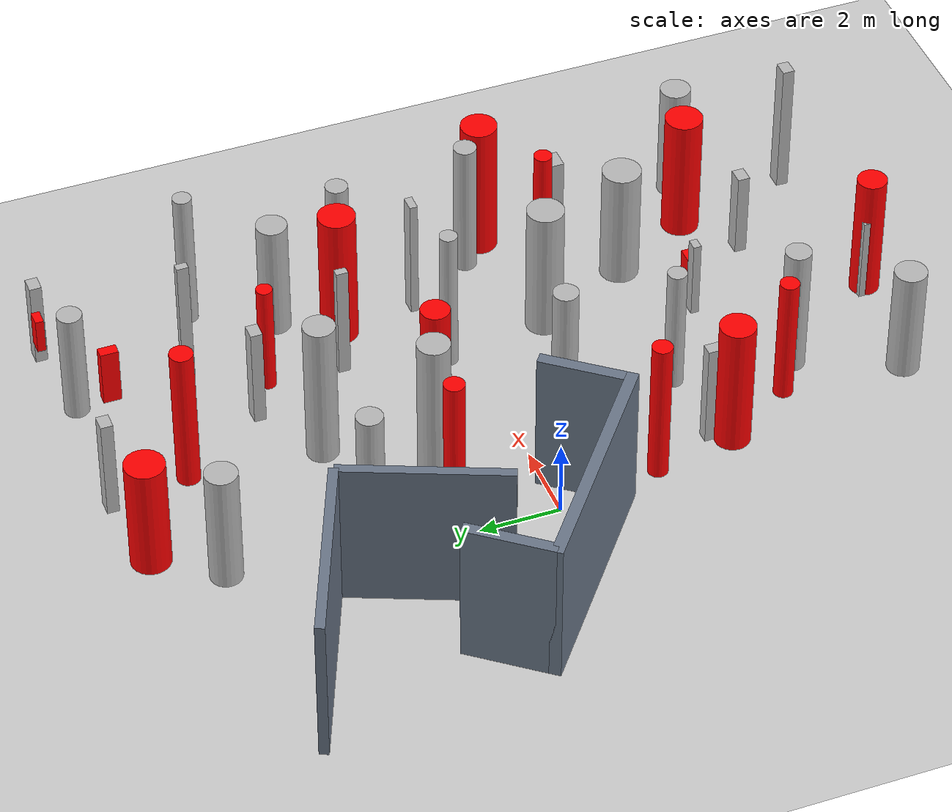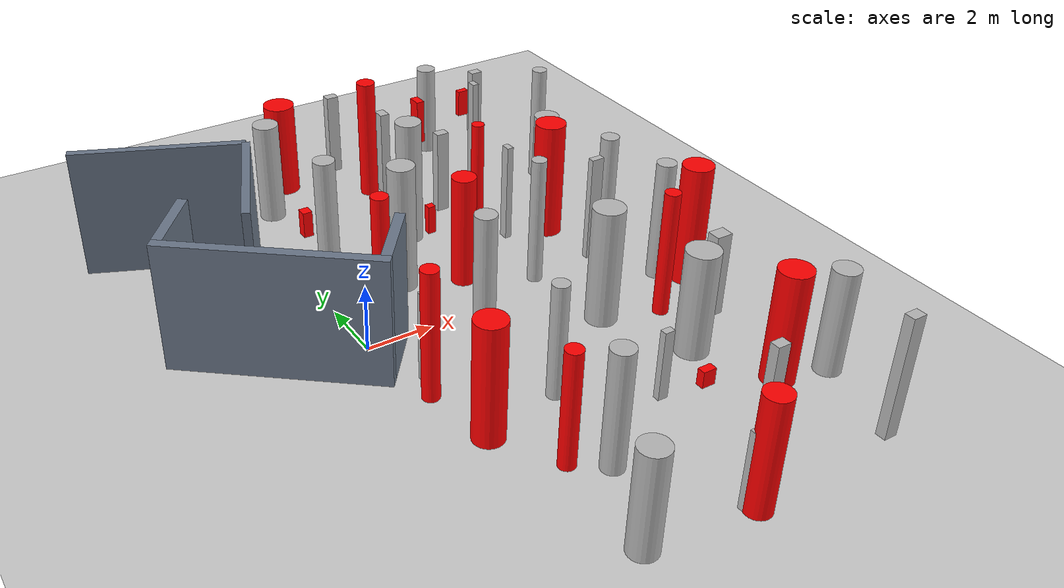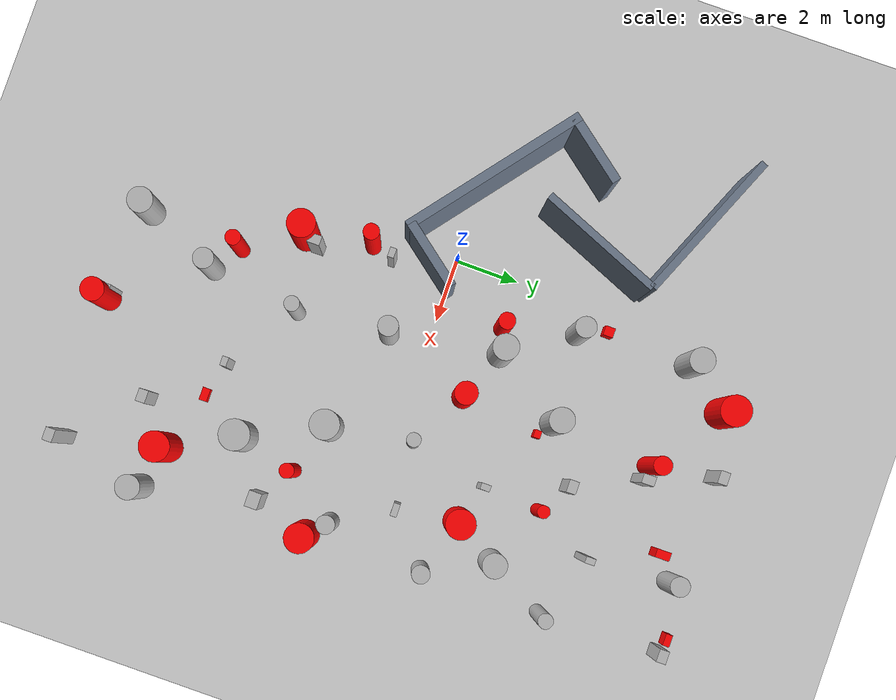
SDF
<sdf version="1.7">
 <world name="default">
  <model name="ground_plane">
   <static>1</static>
   <link name="link">
    <collision name="collision">
     <geometry><plane><normal>0 0 1</normal><size>100 100</size></plane></geometry>
     <surface>
      <contact><collide_bitmask>65535</collide_bitmask></contact>
      <friction><ode><mu>100</mu><mu2>50</mu2></ode></friction>
     </surface>
    </collision>
    <visual name="visual">
     <cast_shadows>0</cast_shadows>
     <geometry><plane><normal>0 0 1</normal><size>100 100</size></plane></geometry>
     <material>
      <script><uri>file://media/materials/scripts/gazebo.material</uri><name>Gazebo/Grey</name></script>
     </material>
    </visual>
   </link>
  </model>
  <model name="cylinder_0_0.7_0.7_3.5">
   <static>true</static>
   <pose>0.9762700785464951 4.30378732744839 1.7724415914984484 0 0 0</pose>
   <link name="link">
    <collision name="collision">
     <geometry>
      <cylinder><radius>0.3270964398016714</radius><length>3.5448831829968968</length></cylinder>
     </geometry>
    </collision>
    <visual name="visual">
     <geometry>
      <cylinder><radius>0.3270964398016714</radius><length>3.5448831829968968</length></cylinder>
     </geometry>
    </visual>
   </link>
  </model>
  <model name="cylinder_1_0.6_0.6_4.0">
   <static>true</static>
   <pose>2.9178822613331223 -1.2482557747461498 1.9818313802505148 0 0 0</pose>
   <link name="link">
    <collision name="collision">
     <geometry>
      <cylinder><radius>0.3150324556477333</radius><length>3.9636627605010295</length></cylinder>
     </geometry>
    </collision>
    <visual name="visual">
     <geometry>
      <cylinder><radius>0.3150324556477333</radius><length>3.9636627605010295</length></cylinder>
     </geometry>
    </visual>
   </link>
  </model>
  <model name="cylinder_2_0.4_0.4_3.9">
   <static>true</static>
   <pose>5.834500761653292 0.5778983950580896 1.9627983191463305 0 0 0</pose>
   <link name="link">
    <collision name="collision">
     <geometry>
      <cylinder><radius>0.2213108174593661</radius><length>3.925596638292661</length></cylinder>
     </geometry>
    </collision>
    <visual name="visual">
     <geometry>
      <cylinder><radius>0.2213108174593661</radius><length>3.925596638292661</length></cylinder>
     </geometry>
    </visual>
   </link>
  </model>
  <model name="cylinder_4_0.5_0.5_3.8">
   <static>true</static>
   <pose>9.57236684465528 5.983171284334472 1.8902645881432276 0 0 0</pose>
   <link name="link">
    <collision name="collision">
     <geometry>
      <cylinder><radius>0.23548232776067998</radius><length>3.7805291762864552</length></cylinder>
     </geometry>
    </collision>
    <visual name="visual">
     <geometry>
      <cylinder><radius>0.23548232776067998</radius><length>3.7805291762864552</length></cylinder>
     </geometry>
    </visual>
   </link>
  </model>
  <model name="cylinder_5_0.6_0.6_3.5">
   <static>true</static>
   <pose>2.7984204265504764 -7.132934251819072 1.760924160875036 0 0 0</pose>
   <link name="link">
    <collision name="collision">
     <geometry>
      <cylinder><radius>0.3243985819971571</radius><length>3.521848321750072</length></cylinder>
     </geometry>
    </collision>
    <visual name="visual">
     <geometry>
      <cylinder><radius>0.3243985819971571</radius><length>3.521848321750072</length></cylinder>
     </geometry>
    </visual>
   </link>
  </model>
  <model name="cylinder_7_0.8_0.8_3.9">
   <static>true</static>
   <pose>2.352709941517541 2.241914454448428 1.9718740392573122 0 0 0</pose>
   <link name="link">
    <collision name="collision">
     <geometry>
      <cylinder><radius>0.404546089731045</radius><length>3.9437480785146244</length></cylinder>
     </geometry>
    </collision>
    <visual name="visual">
     <geometry>
      <cylinder><radius>0.404546089731045</radius><length>3.9437480785146244</length></cylinder>
     </geometry>
    </visual>
   </link>
  </model>
  <model name="cylinder_12_0.6_0.6_3.0">
   <static>true</static>
   <pose>9.535221763806742 2.0969103949009193 1.5195938961271604 0 0 0</pose>
   <link name="link">
    <collision name="collision">
     <geometry>
      <cylinder><radius>0.2848420887729229</radius><length>3.039187792254321</length></cylinder>
     </geometry>
    </collision>
    <visual name="visual">
     <geometry>
      <cylinder><radius>0.2848420887729229</radius><length>3.039187792254321</length></cylinder>
     </geometry>
    </visual>
   </link>
  </model>
  <model name="cylinder_16_0.8_0.8_3.0">
   <static>true</static>
   <pose>1.730258696201663 -9.597849076250128 1.5023477380962735 0 0 0</pose>
   <link name="link">
    <collision name="collision">
     <geometry><cylinder><radius>0.403344961038869</radius><length>3.004695476192547</length></cylinder></geometry>
    </collision>
    <visual name="visual">
     <geometry><cylinder><radius>0.403344961038869</radius><length>3.004695476192547</length></cylinder></geometry>
    </visual>
   </link>
  </model>
  <model name="cylinder_17_0.6_0.6_3.7">
   <static>true</static>
   <pose>9.0549802303397 -1.0574924276474529 1.849739637658752 0 0 0</pose>
   <link name="link">
    <collision name="collision">
     <geometry>
      <cylinder><radius>0.2892310852565401</radius><length>3.699479275317504</length></cylinder>
     </geometry>
    </collision>
    <visual name="visual">
     <geometry>
      <cylinder><radius>0.2892310852565401</radius><length>3.699479275317504</length></cylinder>
     </geometry>
    </visual>
   </link>
  </model>
  <model name="cylinder_18_0.9_0.9_3.6">
   <static>true</static>
   <pose>6.275956394049544 -2.069885183060307 1.7906364363179295 0 0 0</pose>
   <link name="link">
    <collision name="collision">
     <geometry>
      <cylinder><radius>0.4645206085564558</radius><length>3.581272872635859</length></cylinder>
     </geometry>
    </collision>
    <visual name="visual">
     <geometry>
      <cylinder><radius>0.4645206085564558</radius><length>3.581272872635859</length></cylinder>
     </geometry>
    </visual>
   </link>
  </model>
  <model name="cylinder_19_0.8_0.8_4.0">
   <static>true</static>
   <pose>3.8506318015553176 4.50508559639281 1.9780418173616119 0 0 0</pose>
   <link name="link">
    <collision name="collision">
     <geometry>
      <cylinder><radius>0.39319705976889124</radius><length>3.9560836347232238</length></cylinder>
     </geometry>
    </collision>
    <visual name="visual">
     <geometry>
      <cylinder><radius>0.39319705976889124</radius><length>3.9560836347232238</length></cylinder>
     </geometry>
    </visual>
   </link>
  </model>
  <model name="cylinder_20_0.5_0.5_3.4">
   <static>true</static>
   <pose>3.2034707498537007 -4.198447855791119 1.714384350472883 0 0 0</pose>
   <link name="link">
    <collision name="collision">
     <geometry>
      <cylinder><radius>0.24064221926673507</radius><length>3.428768700945766</length></cylinder>
     </geometry>
    </collision>
    <visual name="visual">
     <geometry>
      <cylinder><radius>0.24064221926673507</radius><length>3.428768700945766</length></cylinder>
     </geometry>
    </visual>
   </link>
  </model>
  <model name="cylinder_21_0.8_0.8_3.2">
   <static>true</static>
   <pose>9.976940131357331 -7.011033906840125 1.5812464673381874 0 0 0</pose>
   <link name="link">
    <collision name="collision">
     <geometry>
      <cylinder><radius>0.38466786928515323</radius><length>3.162492934676375</length></cylinder>
     </geometry>
    </collision>
    <visual name="visual">
     <geometry>
      <cylinder><radius>0.38466786928515323</radius><length>3.162492934676375</length></cylinder>
     </geometry>
    </visual>
   </link>
  </model>
  <model name="cylinder_23_0.6_0.6_3.0">
   <static>true</static>
   <pose>7.327646518572584 9.510430100057716 1.505857042092501 0 0 0</pose>
   <link name="link">
    <collision name="collision">
     <geometry>
      <cylinder><radius>0.30799341934350916</radius><length>3.011714084185002</length></cylinder>
     </geometry>
    </collision>
    <visual name="visual">
     <geometry>
      <cylinder><radius>0.30799341934350916</radius><length>3.011714084185002</length></cylinder>
     </geometry>
    </visual>
   </link>
  </model>
  <model name="cylinder_25_0.8_0.8_3.2">
   <static>true</static>
   <pose>8.561625869311818 4.0882880384706555 1.5823470782489564 0 0 0</pose>
   <link name="link">
    <collision name="collision">
     <geometry>
      <cylinder><radius>0.3864435204499291</radius><length>3.1646941564979127</length></cylinder>
     </geometry>
    </collision>
    <visual name="visual">
     <geometry>
      <cylinder><radius>0.3864435204499291</radius><length>3.1646941564979127</length></cylinder>
     </geometry>
    </visual>
   </link>
  </model>
  <model name="cylinder_28_0.8_0.8_3.2">
   <static>true</static>
   <pose>0.731584222174444 7.933425860806842 1.608448492199237 0 0 0</pose>
   <link name="link">
    <collision name="collision">
     <geometry>
      <cylinder><radius>0.3989234609300302</radius><length>3.216896984398474</length></cylinder>
     </geometry>
    </collision>
    <visual name="visual">
     <geometry>
      <cylinder><radius>0.3989234609300302</radius><length>3.216896984398474</length></cylinder>
     </geometry>
    </visual>
   </link>
  </model>
  <model name="cylinder_29_1.0_1.0_3.2">
   <static>true</static>
   <pose>7.453013108947905 -4.529159303687285 1.592817972152976 0 0 0</pose>
   <link name="link">
    <collision name="collision">
     <geometry>
      <cylinder><radius>0.48583749709158336</radius><length>3.185635944305952</length></cylinder>
     </geometry>
    </collision>
    <visual name="visual">
     <geometry>
      <cylinder><radius>0.48583749709158336</radius><length>3.185635944305952</length></cylinder>
     </geometry>
    </visual>
   </link>
  </model>
  <model name="box_1_0.4_0.3_2.3">
   <static>true</static>
   <pose>7.277112118464628 -7.649362880759338 1.1320681063451534 0 0 0</pose>
   <link name="link">
    <collision name="collision"><geometry><box><size>0.4 0.3 2.3</size></box></geometry></collision>
    <visual name="visual"><geometry><box><size>0.4 0.3 2.3</size></box></geometry></visual>
   </link>
  </model>
  <model name="box_3_0.2_0.2_2.3">
   <static>true</static>
   <pose>4.511887284211575 -9.771450827499379 1.1469466454003752 0 0 0</pose>
   <link name="link">
    <collision name="collision"><geometry><box><size>0.2 0.2 2.3</size></box></geometry></collision>
    <visual name="visual"><geometry><box><size>0.2 0.2 2.3</size></box></geometry></visual>
   </link>
  </model>
  <model name="box_4_0.4_0.3_2.7">
   <static>true</static>
   <pose>5.5739079188220675 5.5481512369750625 1.3738131379325615 0 0 0</pose>
   <link name="link">
    <collision name="collision"><geometry><box><size>0.4 0.3 2.7</size></box></geometry></collision>
    <visual name="visual"><geometry><box><size>0.4 0.3 2.7</size></box></geometry></visual>
   </link>
  </model>
  <model name="box_7_0.4_0.3_2.3">
   <static>true</static>
   <pose>9.485124256361006 9.806900031217879 1.1629544260466054 0 0 0</pose>
   <link name="link">
    <collision name="collision"><geometry><box><size>0.4 0.3 2.3</size></box></geometry></collision>
    <visual name="visual"><geometry><box><size>0.4 0.3 2.3</size></box></geometry></visual>
   </link>
  </model>
  <model name="box_9_0.3_0.4_2.8">
   <static>true</static>
   <pose>1.0937561732283796 -4.258969601607405 1.4148568693335641 0 0 0</pose>
   <link name="link">
    <collision name="collision"><geometry><box><size>0.3 0.4 2.8</size></box></geometry></collision>
    <visual name="visual"><geometry><box><size>0.3 0.4 2.8</size></box></geometry></visual>
   </link>
  </model>
  <model name="box_10_0.3_0.4_2.8">
   <static>true</static>
   <pose>4.614181982549523 7.634404246676794 1.3790568960774285 0 0 0</pose>
   <link name="link">
    <collision name="collision"><geometry><box><size>0.3 0.4 2.8</size></box></geometry></collision>
    <visual name="visual"><geometry><box><size>0.3 0.4 2.8</size></box></geometry></visual>
   </link>
  </model>
  <model name="box_11_0.4_0.3_3.6">
   <static>true</static>
   <pose>9.255406396804847 -9.662566532599206 1.8136786497018633 0 0 0</pose>
   <link name="link">
    <collision name="collision"><geometry><box><size>0.4 0.3 3.6</size></box></geometry></collision>
    <visual name="visual"><geometry><box><size>0.4 0.3 3.6</size></box></geometry></visual>
   </link>
  </model>
  <model name="box_16_0.2_0.3_3.1">
   <static>true</static>
   <pose>6.448134767113807 3.068423222272738 1.5369230010823904 0 0 0</pose>
   <link name="link">
    <collision name="collision"><geometry><box><size>0.2 0.3 3.1</size></box></geometry></collision>
    <visual name="visual"><geometry><box><size>0.2 0.3 3.1</size></box></geometry></visual>
   </link>
  </model>
  <model name="box_17_0.3_0.2_2.7">
   <static>true</static>
   <pose>0.6983370985416792 -1.9151276412148244 1.3650998770600098 0 0 0</pose>
   <link name="link">
    <collision name="collision"><geometry><box><size>0.3 0.2 2.7</size></box></geometry></collision>
    <visual name="visual"><geometry><box><size>0.3 0.2 2.7</size></box></geometry></visual>
   </link>
  </model>
  <model name="box_18_0.4_0.3_2.7">
   <static>true</static>
   <pose>3.815695523130591 9.746975141479364 1.3645446259967866 0 0 0</pose>
   <link name="link">
    <collision name="collision"><geometry><box><size>0.4 0.3 2.7</size></box></geometry></collision>
    <visual name="visual"><geometry><box><size>0.4 0.3 2.7</size></box></geometry></visual>
   </link>
  </model>
  <model name="box_23_0.3_0.2_2.1">
   <static>true</static>
   <pose>5.4622010501083835 -5.662594998179187 1.042924190608832 0 0 0</pose>
   <link name="link">
    <collision name="collision"><geometry><box><size>0.3 0.2 2.1</size></box></geometry></collision>
    <visual name="visual"><geometry><box><size>0.3 0.2 2.1</size></box></geometry></visual>
   </link>
  </model>
  <model name="box_24_0.2_0.3_3.5">
   <static>true</static>
   <pose>7.476643566694364 6.679632877532635 1.7712254629659103 0 0 0</pose>
   <link name="link">
    <collision name="collision"><geometry><box><size>0.2 0.3 3.5</size></box></geometry></collision>
    <visual name="visual"><geometry><box><size>0.2 0.3 3.5</size></box></geometry></visual>
   </link>
  </model>
  <model name="box_25_0.5_0.4_2.6">
   <static>true</static>
   <pose>9.122463191199198 -3.3911885479431225 1.2808594946322427 0 0 0</pose>
   <link name="link">
    <collision name="collision"><geometry><box><size>0.5 0.4 2.6</size></box></geometry></collision>
    <visual name="visual"><geometry><box><size>0.5 0.4 2.6</size></box></geometry></visual>
   </link>
  </model>
  <model name="box_27_0.4_0.2_3.3">
   <static>true</static>
   <pose>7.972753368165324 0.7434025589741489 1.6736532695846353 0 0 0</pose>
   <link name="link">
    <collision name="collision"><geometry><box><size>0.4 0.2 3.3</size></box></geometry></collision>
    <visual name="visual"><geometry><box><size>0.4 0.2 3.3</size></box></geometry></visual>
   </link>
  </model>
  <model name="large_l_wall_00">
   <static>true</static>
   <link name="link">
    <collision name="collision_0">
     <pose>-1.529906 3.879761 1.971914 0 0 4.315187</pose>
     <geometry><box><size>4.083165 0.235811 3.943828</size></box></geometry>
    </collision>
    <visual name="visual_0">
     <pose>-1.529906 3.879761 1.971914 0 0 4.315187</pose>
     <geometry><box><size>4.083165 0.235811 3.943828</size></box></geometry>
     <material>
      <ambient>0.32 0.36 0.42 1</ambient>
      <diffuse>0.42 0.47 0.54 1</diffuse>
      <specular>0.12 0.12 0.12 1</specular>
     </material>
    </visual>
    <collision name="collision_1">
     <pose>-3.033878 6.724620 1.971914 0 0 5.885983</pose>
     <geometry><box><size>4.974774 0.235811 3.943828</size></box></geometry>
    </collision>
    <visual name="visual_1">
     <pose>-3.033878 6.724620 1.971914 0 0 5.885983</pose>
     <geometry><box><size>4.974774 0.235811 3.943828</size></box></geometry>
     <material>
      <ambient>0.32 0.36 0.42 1</ambient>
      <diffuse>0.42 0.47 0.54 1</diffuse>
      <specular>0.12 0.12 0.12 1</specular>
     </material>
    </visual>
   </link>
  </model>
  <model name="large_u_wall_00">
   <static>true</static>
   <link name="link">
    <collision name="collision_0">
     <pose>-2.485174 0.183029 1.919143 0 0 5.616336</pose>
     <geometry><box><size>6.098892 0.289693 3.838286</size></box></geometry>
    </collision>
    <visual name="visual_0">
     <pose>-2.485174 0.183029 1.919143 0 0 5.616336</pose>
     <geometry><box><size>6.098892 0.289693 3.838286</size></box></geometry>
     <material>
      <ambient>0.32 0.36 0.42 1</ambient>
      <diffuse>0.42 0.47 0.54 1</diffuse>
      <specular>0.12 0.12 0.12 1</specular>
     </material>
    </visual>
    <collision name="collision_1">
     <pose>-4.081570 2.851028 1.919143 0 0 7.187132</pose>
     <geometry><box><size>2.218106 0.289693 3.838286</size></box></geometry>
    </collision>
    <visual name="visual_1">
     <pose>-4.081570 2.851028 1.919143 0 0 7.187132</pose>
     <geometry><box><size>2.218106 0.289693 3.838286</size></box></geometry>
     <material>
      <ambient>0.32 0.36 0.42 1</ambient>
      <diffuse>0.42 0.47 0.54 1</diffuse>
      <specular>0.12 0.12 0.12 1</specular>
     </material>
    </visual>
    <collision name="collision_2">
     <pose>0.483150 -0.742039 1.919143 0 0 7.187132</pose>
     <geometry><box><size>2.218106 0.289693 3.838286</size></box></geometry>
    </collision>
    <visual name="visual_2">
     <pose>0.483150 -0.742039 1.919143 0 0 7.187132</pose>
     <geometry><box><size>2.218106 0.289693 3.838286</size></box></geometry>
     <material>
      <ambient>0.32 0.36 0.42 1</ambient>
      <diffuse>0.42 0.47 0.54 1</diffuse>
      <specular>0.12 0.12 0.12 1</specular>
     </material>
    </visual>
   </link>
  </model>
  <model name="dynamic_cylinder_0_0.5_0.5_3.4">
   <static>true</static>
   <pose>1.9133800887739016 -6.518349778926686 1.7166324117502467 0 0 0</pose>
   <link name="link">
    <collision name="collision">
     <geometry>
      <cylinder><radius>0.24081300271355185</radius><length>3.4332648235004934</length></cylinder>
     </geometry>
    </collision>
    <visual name="visual">
     <geometry>
      <cylinder><radius>0.24081300271355185</radius><length>3.4332648235004934</length></cylinder>
     </geometry>
     <material><ambient>1 0 0 1</ambient><diffuse>1 0 0 1</diffuse><specular>0.5 0.5 0.5 1</specular></material>
    </visual>
   </link>
   <plugin name="obstacle_motion" filename="libobstaclePathPlugin.so">
    <orientation>false</orientation>
    <loop>0</loop>
    <velocity>0.243712226106518</velocity>
    <path>
     <waypoint>1.9133800887739016 -6.518349778926686 1.7166324117502467</waypoint>
     <waypoint>-6.538554792730633 -0.7514721940170888 1.7166324117502467</waypoint>
    </path>
   </plugin>
  </model>
  <model name="dynamic_cylinder_2_0.5_0.5_3.3">
   <static>true</static>
   <pose>1.5546188281965123 2.0373595190541693 1.6522857753909816 0 0 0</pose>
   <link name="link">
    <collision name="collision">
     <geometry>
      <cylinder><radius>0.262975997026076</radius><length>3.3045715507819633</length></cylinder>
     </geometry>
    </collision>
    <visual name="visual">
     <geometry>
      <cylinder><radius>0.262975997026076</radius><length>3.3045715507819633</length></cylinder>
     </geometry>
     <material><ambient>1 0 0 1</ambient><diffuse>1 0 0 1</diffuse><specular>0.5 0.5 0.5 1</specular></material>
    </visual>
   </link>
   <plugin name="obstacle_motion" filename="libobstaclePathPlugin.so">
    <orientation>false</orientation>
    <loop>0</loop>
    <velocity>0.013688410984091681</velocity>
    <path>
     <waypoint>1.5546188281965123 2.0373595190541693 1.6522857753909816</waypoint>
     <waypoint>-2.2380192958602985 5.90672450776008 1.6522857753909816</waypoint>
    </path>
   </plugin>
  </model>
  <model name="dynamic_cylinder_3_0.7_0.7_3.4">
   <static>true</static>
   <pose>3.999775292537222 1.5938061949046967 1.7161397904256082 0 0 0</pose>
   <link name="link">
    <collision name="collision">
     <geometry>
      <cylinder><radius>0.3627803060360722</radius><length>3.4322795808512163</length></cylinder>
     </geometry>
    </collision>
    <visual name="visual">
     <geometry>
      <cylinder><radius>0.3627803060360722</radius><length>3.4322795808512163</length></cylinder>
     </geometry>
     <material><ambient>1 0 0 1</ambient><diffuse>1 0 0 1</diffuse><specular>0.5 0.5 0.5 1</specular></material>
    </visual>
   </link>
   <plugin name="obstacle_motion" filename="libobstaclePathPlugin.so">
    <orientation>false</orientation>
    <loop>0</loop>
    <velocity>0.41662421498197943</velocity>
    <path>
     <waypoint>3.999775292537222 1.5938061949046967 1.7161397904256082</waypoint>
     <waypoint>-1.3139505719795208 3.2229753116282622 1.7161397904256082</waypoint>
    </path>
   </plugin>
  </model>
  <model name="dynamic_cylinder_4_0.5_0.5_3.9">
   <static>true</static>
   <pose>0.4382736043699009 -2.645466298643009 1.9483471250854072 0 0 0</pose>
   <link name="link">
    <collision name="collision">
     <geometry>
      <cylinder><radius>0.25169279740929595</radius><length>3.8966942501708144</length></cylinder>
     </geometry>
    </collision>
    <visual name="visual">
     <geometry>
      <cylinder><radius>0.25169279740929595</radius><length>3.8966942501708144</length></cylinder>
     </geometry>
     <material><ambient>1 0 0 1</ambient><diffuse>1 0 0 1</diffuse><specular>0.5 0.5 0.5 1</specular></material>
    </visual>
   </link>
   <plugin name="obstacle_motion" filename="libobstaclePathPlugin.so">
    <orientation>false</orientation>
    <loop>0</loop>
    <velocity>0.27756935052966913</velocity>
    <path>
     <waypoint>0.4382736043699009 -2.645466298643009 1.9483471250854072</waypoint>
     <waypoint>-8.655419200175725 -9.289230549313078 1.9483471250854072</waypoint>
    </path>
   </plugin>
  </model>
  <model name="dynamic_cylinder_5_0.9_0.9_3.4">
   <static>true</static>
   <pose>8.564167886587523 -6.635534908348594 1.6988336169657772 0 0 0</pose>
   <link name="link">
    <collision name="collision">
     <geometry>
      <cylinder><radius>0.4732950059487519</radius><length>3.3976672339315543</length></cylinder>
     </geometry>
    </collision>
    <visual name="visual">
     <geometry>
      <cylinder><radius>0.4732950059487519</radius><length>3.3976672339315543</length></cylinder>
     </geometry>
     <material><ambient>1 0 0 1</ambient><diffuse>1 0 0 1</diffuse><specular>0.5 0.5 0.5 1</specular></material>
    </visual>
   </link>
   <plugin name="obstacle_motion" filename="libobstaclePathPlugin.so">
    <orientation>false</orientation>
    <loop>0</loop>
    <velocity>0.7873648145968252</velocity>
    <path>
     <waypoint>8.564167886587523 -6.635534908348594 1.6988336169657772</waypoint>
     <waypoint>4.580310206729843 -4.781519830447964 1.6988336169657772</waypoint>
    </path>
   </plugin>
  </model>
  <model name="dynamic_cylinder_7_0.4_0.4_3.0">
   <static>true</static>
   <pose>6.571413711453622 4.947635631165372 1.5046235534897643 0 0 0</pose>
   <link name="link">
    <collision name="collision">
     <geometry>
      <cylinder><radius>0.20187132993401313</radius><length>3.0092471069795286</length></cylinder>
     </geometry>
    </collision>
    <visual name="visual">
     <geometry>
      <cylinder><radius>0.20187132993401313</radius><length>3.0092471069795286</length></cylinder>
     </geometry>
     <material><ambient>1 0 0 1</ambient><diffuse>1 0 0 1</diffuse><specular>0.5 0.5 0.5 1</specular></material>
    </visual>
   </link>
   <plugin name="obstacle_motion" filename="libobstaclePathPlugin.so">
    <orientation>false</orientation>
    <loop>0</loop>
    <velocity>0.7524914090061574</velocity>
    <path>
     <waypoint>6.571413711453622 4.947635631165372 1.5046235534897643</waypoint>
     <waypoint>-0.46792153913479906 8.74587077131695 1.5046235534897643</waypoint>
    </path>
   </plugin>
  </model>
  <model name="dynamic_cylinder_8_0.9_0.9_3.7">
   <static>true</static>
   <pose>9.686034553411131 -1.6606559600860304 1.865339533319295 0 0 0</pose>
   <link name="link">
    <collision name="collision">
     <geometry><cylinder><radius>0.4592173075377952</radius><length>3.73067906663859</length></cylinder></geometry>
    </collision>
    <visual name="visual">
     <geometry><cylinder><radius>0.4592173075377952</radius><length>3.73067906663859</length></cylinder></geometry>
     <material><ambient>1 0 0 1</ambient><diffuse>1 0 0 1</diffuse><specular>0.5 0.5 0.5 1</specular></material>
    </visual>
   </link>
   <plugin name="obstacle_motion" filename="libobstaclePathPlugin.so">
    <orientation>false</orientation>
    <loop>0</loop>
    <velocity>0.19967283393019697</velocity>
    <path>
     <waypoint>9.686034553411131 -1.6606559600860304 1.865339533319295</waypoint>
     <waypoint>-2.64506381938725 -4.136254188531572 1.865339533319295</waypoint>
    </path>
   </plugin>
  </model>
  <model name="dynamic_cylinder_9_1.0_1.0_3.0">
   <static>true</static>
   <pose>1.8114538725348472 9.398220518985394 1.5139318620615527 0 0 0</pose>
   <link name="link">
    <collision name="collision">
     <geometry>
      <cylinder><radius>0.48871902123499805</radius><length>3.0278637241231054</length></cylinder>
     </geometry>
    </collision>
    <visual name="visual">
     <geometry>
      <cylinder><radius>0.48871902123499805</radius><length>3.0278637241231054</length></cylinder>
     </geometry>
     <material><ambient>1 0 0 1</ambient><diffuse>1 0 0 1</diffuse><specular>0.5 0.5 0.5 1</specular></material>
    </visual>
   </link>
   <plugin name="obstacle_motion" filename="libobstaclePathPlugin.so">
    <orientation>false</orientation>
    <loop>0</loop>
    <velocity>0.9438645773285519</velocity>
    <path>
     <waypoint>1.8114538725348472 9.398220518985394 1.5139318620615527</waypoint>
     <waypoint>-6.2963599739570935 9.115641071520354 1.5139318620615527</waypoint>
    </path>
   </plugin>
  </model>
  <model name="dynamic_cylinder_11_0.7_0.7_3.4">
   <static>true</static>
   <pose>4.757625678346027 -9.965243464306553 1.6947834242360962 0 0 0</pose>
   <link name="link">
    <collision name="collision">
     <geometry>
      <cylinder><radius>0.3701215564684073</radius><length>3.3895668484721924</length></cylinder>
     </geometry>
    </collision>
    <visual name="visual">
     <geometry>
      <cylinder><radius>0.3701215564684073</radius><length>3.3895668484721924</length></cylinder>
     </geometry>
     <material><ambient>1 0 0 1</ambient><diffuse>1 0 0 1</diffuse><specular>0.5 0.5 0.5 1</specular></material>
    </visual>
   </link>
   <plugin name="obstacle_motion" filename="libobstaclePathPlugin.so">
    <orientation>false</orientation>
    <loop>0</loop>
    <velocity>0.9202335372777397</velocity>
    <path>
     <waypoint>4.757625678346027 -9.965243464306553 1.6947834242360962</waypoint>
     <waypoint>-2.7267911779116805 -8.776051057929164 1.6947834242360962</waypoint>
    </path>
   </plugin>
  </model>
  <model name="dynamic_cylinder_12_0.6_0.6_3.9">
   <static>true</static>
   <pose>4.127025610673165 7.743973641724569 1.9509205849000373 0 0 0</pose>
   <link name="link">
    <collision name="collision">
     <geometry>
      <cylinder><radius>0.2881973758937145</radius><length>3.9018411698000746</length></cylinder>
     </geometry>
    </collision>
    <visual name="visual">
     <geometry>
      <cylinder><radius>0.2881973758937145</radius><length>3.9018411698000746</length></cylinder>
     </geometry>
     <material><ambient>1 0 0 1</ambient><diffuse>1 0 0 1</diffuse><specular>0.5 0.5 0.5 1</specular></material>
    </visual>
   </link>
   <plugin name="obstacle_motion" filename="libobstaclePathPlugin.so">
    <orientation>false</orientation>
    <loop>0</loop>
    <velocity>0.35150958111822106</velocity>
    <path>
     <waypoint>4.127025610673165 7.743973641724569 1.9509205849000373</waypoint>
     <waypoint>-9.960757108052356 -4.293279507491725 1.9509205849000373</waypoint>
    </path>
   </plugin>
  </model>
  <model name="dynamic_cylinder_14_0.9_0.9_3.7">
   <static>true</static>
   <pose>7.730103102084092 2.713545277616838 1.8456554406053973 0 0 0</pose>
   <link name="link">
    <collision name="collision">
     <geometry>
      <cylinder><radius>0.46435030822045165</radius><length>3.6913108812107946</length></cylinder>
     </geometry>
    </collision>
    <visual name="visual">
     <geometry>
      <cylinder><radius>0.46435030822045165</radius><length>3.6913108812107946</length></cylinder>
     </geometry>
     <material><ambient>1 0 0 1</ambient><diffuse>1 0 0 1</diffuse><specular>0.5 0.5 0.5 1</specular></material>
    </visual>
   </link>
   <plugin name="obstacle_motion" filename="libobstaclePathPlugin.so">
    <orientation>false</orientation>
    <loop>0</loop>
    <velocity>0.4956999226830051</velocity>
    <path>
     <waypoint>7.730103102084092 2.713545277616838 1.8456554406053973</waypoint>
     <waypoint>9.759953992196255 2.284486632533713 1.8456554406053973</waypoint>
    </path>
   </plugin>
  </model>
  <model name="dynamic_cylinder_15_0.5_0.5_3.8">
   <static>true</static>
   <pose>7.930225241266424 -2.652991997576608 1.9162942589110918 0 0 0</pose>
   <link name="link">
    <collision name="collision">
     <geometry>
      <cylinder><radius>0.22861410559804776</radius><length>3.8325885178221837</length></cylinder>
     </geometry>
    </collision>
    <visual name="visual">
     <geometry>
      <cylinder><radius>0.22861410559804776</radius><length>3.8325885178221837</length></cylinder>
     </geometry>
     <material><ambient>1 0 0 1</ambient><diffuse>1 0 0 1</diffuse><specular>0.5 0.5 0.5 1</specular></material>
    </visual>
   </link>
   <plugin name="obstacle_motion" filename="libobstaclePathPlugin.so">
    <orientation>false</orientation>
    <loop>0</loop>
    <velocity>0.3664099003028253</velocity>
    <path>
     <waypoint>7.930225241266424 -2.652991997576608 1.9162942589110918</waypoint>
     <waypoint>-4.684531119073892 2.532735034850999 1.9162942589110918</waypoint>
    </path>
   </plugin>
  </model>
  <model name="dynamic_cylinder_18_0.9_0.9_3.5">
   <static>true</static>
   <pose>0.8501168572447138 -4.728447150995622 1.7730069448263368 0 0 0</pose>
   <link name="link">
    <collision name="collision">
     <geometry>
      <cylinder><radius>0.4432089038004367</radius><length>3.5460138896526736</length></cylinder>
     </geometry>
    </collision>
    <visual name="visual">
     <geometry>
      <cylinder><radius>0.4432089038004367</radius><length>3.5460138896526736</length></cylinder>
     </geometry>
     <material><ambient>1 0 0 1</ambient><diffuse>1 0 0 1</diffuse><specular>0.5 0.5 0.5 1</specular></material>
    </visual>
   </link>
   <plugin name="obstacle_motion" filename="libobstaclePathPlugin.so">
    <orientation>false</orientation>
    <loop>0</loop>
    <velocity>0.812185400181229</velocity>
    <path>
     <waypoint>0.8501168572447138 -4.728447150995622 1.7730069448263368</waypoint>
     <waypoint>1.088574547848229 4.343704805962121 1.7730069448263368</waypoint>
    </path>
   </plugin>
  </model>
  <model name="dynamic_box_5_0.2_0.2_0.9">
   <static>true</static>
   <pose>4.359024134140648 4.127436026953961 0.6928156489418174 0 0 0</pose>
   <link name="link">
    <collision name="collision">
     <geometry><box><size>0.24740689588738393 0.22604258484309508 0.922758693030776</size></box></geometry>
    </collision>
    <visual name="visual">
     <geometry><box><size>0.24740689588738393 0.22604258484309508 0.922758693030776</size></box></geometry>
     <material><ambient>1 0 0 1</ambient><diffuse>1 0 0 1</diffuse><specular>0.5 0.5 0.5 1</specular></material>
    </visual>
   </link>
   <plugin name="obstacle_motion" filename="libobstaclePathPlugin.so">
    <orientation>false</orientation>
    <loop>0</loop>
    <velocity>0.5523872021245944</velocity>
    <path>
     <waypoint>4.359024134140648 4.127436026953961 0.6928156489418174</waypoint>
     <waypoint>1.23822915615458 -3.2869996490256326 1.379078910606939</waypoint>
    </path>
   </plugin>
  </model>
  <model name="dynamic_box_8_0.4_0.2_0.5">
   <static>true</static>
   <pose>6.606073719499896 -6.041847941713517 0.46360810801229974 0 0 0</pose>
   <link name="link">
    <collision name="collision">
     <geometry><box><size>0.4114046093350249 0.2456422564111857 0.5081991405860741</size></box></geometry>
    </collision>
    <visual name="visual">
     <geometry><box><size>0.4114046093350249 0.2456422564111857 0.5081991405860741</size></box></geometry>
     <material><ambient>1 0 0 1</ambient><diffuse>1 0 0 1</diffuse><specular>0.5 0.5 0.5 1</specular></material>
    </visual>
   </link>
   <plugin name="obstacle_motion" filename="libobstaclePathPlugin.so">
    <orientation>false</orientation>
    <loop>0</loop>
    <velocity>0.6107402702241518</velocity>
    <path>
     <waypoint>6.606073719499896 -6.041847941713517 0.46360810801229974</waypoint>
     <waypoint>-8.86187094792336 4.5711548706833405 1.564642064938573</waypoint>
    </path>
   </plugin>
  </model>
  <model name="dynamic_box_10_0.4_0.2_0.9">
   <static>true</static>
   <pose>9.003849364318405 9.889918627466496 1.2099066023567788 0 0 0</pose>
   <link name="link">
    <collision name="collision">
     <geometry><box><size>0.3731890134273711 0.21283514274999013 0.9218336068528409</size></box></geometry>
    </collision>
    <visual name="visual">
     <geometry><box><size>0.3731890134273711 0.21283514274999013 0.9218336068528409</size></box></geometry>
     <material><ambient>1 0 0 1</ambient><diffuse>1 0 0 1</diffuse><specular>0.5 0.5 0.5 1</specular></material>
    </visual>
   </link>
   <plugin name="obstacle_motion" filename="libobstaclePathPlugin.so">
    <orientation>false</orientation>
    <loop>0</loop>
    <velocity>0.9015075726272046</velocity>
    <path>
     <waypoint>9.003849364318405 9.889918627466496 1.2099066023567788</waypoint>
     <waypoint>-0.7864547771487795 -7.093326773398669 1.881278388981783</waypoint>
    </path>
   </plugin>
  </model>
  <model name="dynamic_box_11_0.3_0.3_0.8">
   <static>true</static>
   <pose>0.6685587900931655 5.154942508548261 1.149929608292406 0 0 0</pose>
   <link name="link">
    <collision name="collision">
     <geometry><box><size>0.29765829017678325 0.31717492787993873 0.8218889624998843</size></box></geometry>
    </collision>
    <visual name="visual">
     <geometry><box><size>0.29765829017678325 0.31717492787993873 0.8218889624998843</size></box></geometry>
     <material><ambient>1 0 0 1</ambient><diffuse>1 0 0 1</diffuse><specular>0.5 0.5 0.5 1</specular></material>
    </visual>
   </link>
   <plugin name="obstacle_motion" filename="libobstaclePathPlugin.so">
    <orientation>false</orientation>
    <loop>0</loop>
    <velocity>0.5275075388049504</velocity>
    <path>
     <waypoint>0.6685587900931655 5.154942508548261 1.149929608292406</waypoint>
     <waypoint>-0.49523322718996843 -1.9710088616062027 0.829365463493797</waypoint>
    </path>
   </plugin>
  </model>
  <model name="dynamic_box_12_0.3_0.5_1.5">
   <static>true</static>
   <pose>6.596706673567889 8.833646668125647 1.5382339896711243 0 0 0</pose>
   <link name="link">
    <collision name="collision">
     <geometry><box><size>0.2685855037914425 0.4511606081111436 1.4957326721950959</size></box></geometry>
    </collision>
    <visual name="visual">
     <geometry><box><size>0.2685855037914425 0.4511606081111436 1.4957326721950959</size></box></geometry>
     <material><ambient>1 0 0 1</ambient><diffuse>1 0 0 1</diffuse><specular>0.5 0.5 0.5 1</specular></material>
    </visual>
   </link>
   <plugin name="obstacle_motion" filename="libobstaclePathPlugin.so">
    <orientation>false</orientation>
    <loop>0</loop>
    <velocity>0.9762052240886762</velocity>
    <path>
     <waypoint>6.596706673567889 8.833646668125647 1.5382339896711243</waypoint>
     <waypoint>8.082621023968938 -3.298285146417801 1.3970663343521301</waypoint>
    </path>
   </plugin>
  </model>
 </world>
</sdf>
